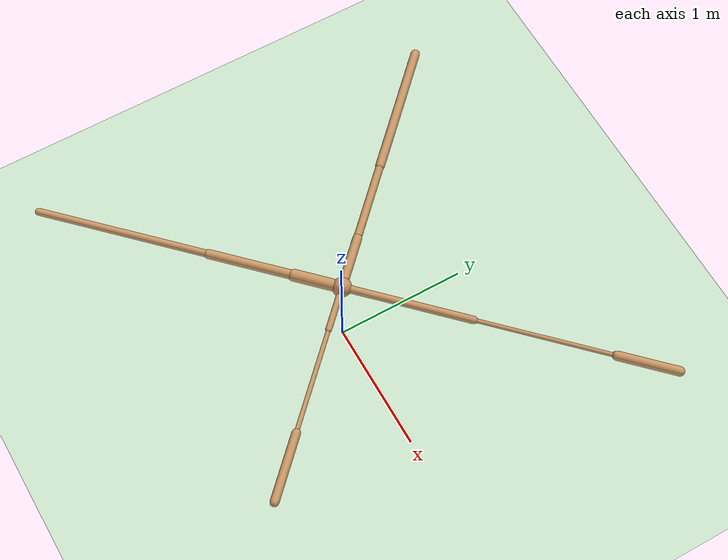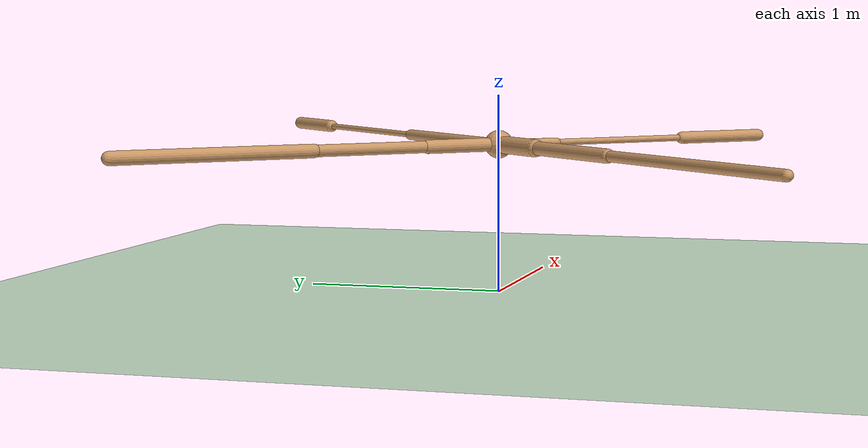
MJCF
<mujoco model="ant">
  <compiler angle="degree" coordinate="local" inertiafromgeom="true" />
  <option integrator="RK4" timestep="0.01" />
  <custom>
    <numeric data="0.0 0.0 0.55 1.0 0.0 0.0 0.0 0.0 1.0 0.0 -1.0 0.0 -1.0 0.0 1.0" name="init_qpos" />
  </custom>
  <default>
    <joint armature="1" damping="1" limited="true" />
    <geom conaffinity="0" condim="3" density="5.0" friction="1 0.5 0.5" margin="0.01" rgba="0.8 0.6 0.4 1" />
  </default>
  <asset>
    <texture builtin="gradient" height="100" rgb1="1 1 1" rgb2="0 0 0" type="skybox" width="100" />
    <texture builtin="flat" height="1278" mark="cross" markrgb="1 1 1" name="texgeom" random="0.01" rgb1="0.8 0.6 0.4" rgb2="0.8 0.6 0.4" type="cube" width="127" />
    <texture builtin="checker" height="100" name="texplane" rgb1="0 0 0" rgb2="0.8 0.8 0.8" type="2d" width="100" />
    <material name="MatPlane" reflectance="0.5" shininess="1" specular="1" texrepeat="60 60" texture="texplane" />
    <material name="geom" texture="texgeom" texuniform="true" />
  </asset>
  <worldbody>
    <light cutoff="100" diffuse="1 1 1" dir="-0 0 -1.3" directional="true" exponent="1" pos="0 0 1.3" specular=".1 .1 .1" />
    <geom conaffinity="1" condim="3" material="MatPlane" name="floor" pos="0 0 0" rgba="0.8 0.9 0.8 1" size="40 40 40" type="plane" />
    <body name="torso" pos="0 0 0.75">
      <camera name="track" mode="trackcom" pos="0 -11 5" xyaxes="1 0 0 0 0.5 1" />
      <geom name="torso_geom" pos="0 0 0" size="0.07137096673250198" type="sphere" />
      <joint armature="0" damping="0" limited="false" margin="0.01" name="root" pos="0 0 0" type="free" />
      <body name="front_left_leg" pos="0 0 0">
        <geom fromto="0 0 0 0.6738627552986145 0.6738627552986145 0" name="aux_1_geom" size="0.028320347890257835" type="capsule" />
        <body name="aux_1" pos="0.6738627552986145 0.6738627552986145 0">
          <joint axis="0 0 1" name="hip_1" pos="0.0 0.0 0.0" range="-30 30" type="hinge" />
          <geom fromto="0 0 0 0.7162979245185852 0.7162979245185852 0" name="left_leg_geom" size="0.015441926196217537" type="capsule" />
          <body name="left_leg_geom_aux" pos="0.7162979245185852 0.7162979245185852 0">
            <joint axis="-1 1 0" name="ankle_1" pos="0.0 0.0 0.0" range="30 70" type="hinge" />
            <geom fromto="0 0 0 0.3107253909111023 0.3107253909111023 0" name="left_ankle_geom" size="0.034628283232450485" type="capsule" />
          </body>
        </body>
      </body>
      <body name="front_right_leg" pos="0 0 0">
        <geom fromto="0 0 0 -0.28848591446876526 0.28848591446876526 0" name="aux_2_geom" size="0.03446177393198013" type="capsule" />
        <body name="aux_2" pos="-0.28848591446876526 0.28848591446876526 0">
          <joint axis="0 0 1" name="hip_2" pos="0.0 0.0 0.0" range="-30 30" type="hinge" />
          <geom fromto="0 0 0 -0.43630555272102356 0.43630555272102356 0" name="right_leg_geom" size="0.029778700321912766" type="capsule" />
          <body name="right_leg_geom_aux" pos="-0.43630555272102356 0.43630555272102356 0">
            <joint axis="1 1 0" name="ankle_2" pos="0.0 0.0 0.0" range="-70 -30" type="hinge" />
            <geom fromto="0 0 0 -0.718545138835907 0.718545138835907 0" name="right_ankle_geom" size="0.03429626300930977" type="capsule" />
          </body>
        </body>
      </body>
      <body name="back_leg" pos="0 0 0">
        <geom fromto="0 0 0 -0.24877390265464783 -0.24877390265464783 0" name="aux_3_geom" size="0.04408176988363266" type="capsule" />
        <body name="aux_3" pos="-0.24877390265464783 -0.24877390265464783 0">
          <joint axis="0 0 1" name="hip_3" pos="0.0 0.0 0.0" range="-30 30" type="hinge" />
          <geom fromto="0 0 0 -0.44715455174446106 -0.44715455174446106 0" name="back_leg_geom" size="0.034282438457012177" type="capsule" />
          <body name="back_leg_geom_aux" pos="-0.44715455174446106 -0.44715455174446106 0">
            <joint axis="-1 1 0" name="ankle_3" pos="0.0 0.0 0.0" range="-70 -30" type="hinge" />
            <geom fromto="0 0 0 -0.904424786567688 -0.904424786567688 0" name="third_ankle_geom" size="0.026584086939692497" type="capsule" />
          </body>
        </body>
      </body>
      <body name="right_back_leg" pos="0 0 0">
        <geom fromto="0 0 0 0.24153727293014526 -0.24153727293014526 0" name="aux_4_geom" size="0.023342875763773918" type="capsule" />
        <body name="aux_4" pos="0.24153727293014526 -0.24153727293014526 0">
          <joint axis="0 0 1" name="hip_4" pos="0.0 0.0 0.0" range="-30 30" type="hinge" />
          <geom fromto="0 0 0 0.5637176036834717 -0.5637176036834717 0" name="rightback_leg_geom" size="0.016496077179908752" type="capsule" />
          <body name="rightback_leg_geom_aux" pos="0.5637176036834717 -0.5637176036834717 0">
            <joint axis="1 1 0" name="ankle_4" pos="0.0 0.0 0.0" range="30 70" type="hinge" />
            <geom fromto="0 0 0 0.3586529493331909 -0.3586529493331909 0" name="fourth_ankle_geom" size="0.03201963007450104" type="capsule" />
          </body>
        </body>
      </body>
    </body>
  </worldbody>
  <actuator>
    <motor ctrllimited="true" ctrlrange="-1.0 1.0" joint="hip_4" gear="150" />
    <motor ctrllimited="true" ctrlrange="-1.0 1.0" joint="ankle_4" gear="150" />
    <motor ctrllimited="true" ctrlrange="-1.0 1.0" joint="hip_1" gear="150" />
    <motor ctrllimited="true" ctrlrange="-1.0 1.0" joint="ankle_1" gear="150" />
    <motor ctrllimited="true" ctrlrange="-1.0 1.0" joint="hip_2" gear="150" />
    <motor ctrllimited="true" ctrlrange="-1.0 1.0" joint="ankle_2" gear="150" />
    <motor ctrllimited="true" ctrlrange="-1.0 1.0" joint="hip_3" gear="150" />
    <motor ctrllimited="true" ctrlrange="-1.0 1.0" joint="ankle_3" gear="150" />
  </actuator>
</mujoco>
